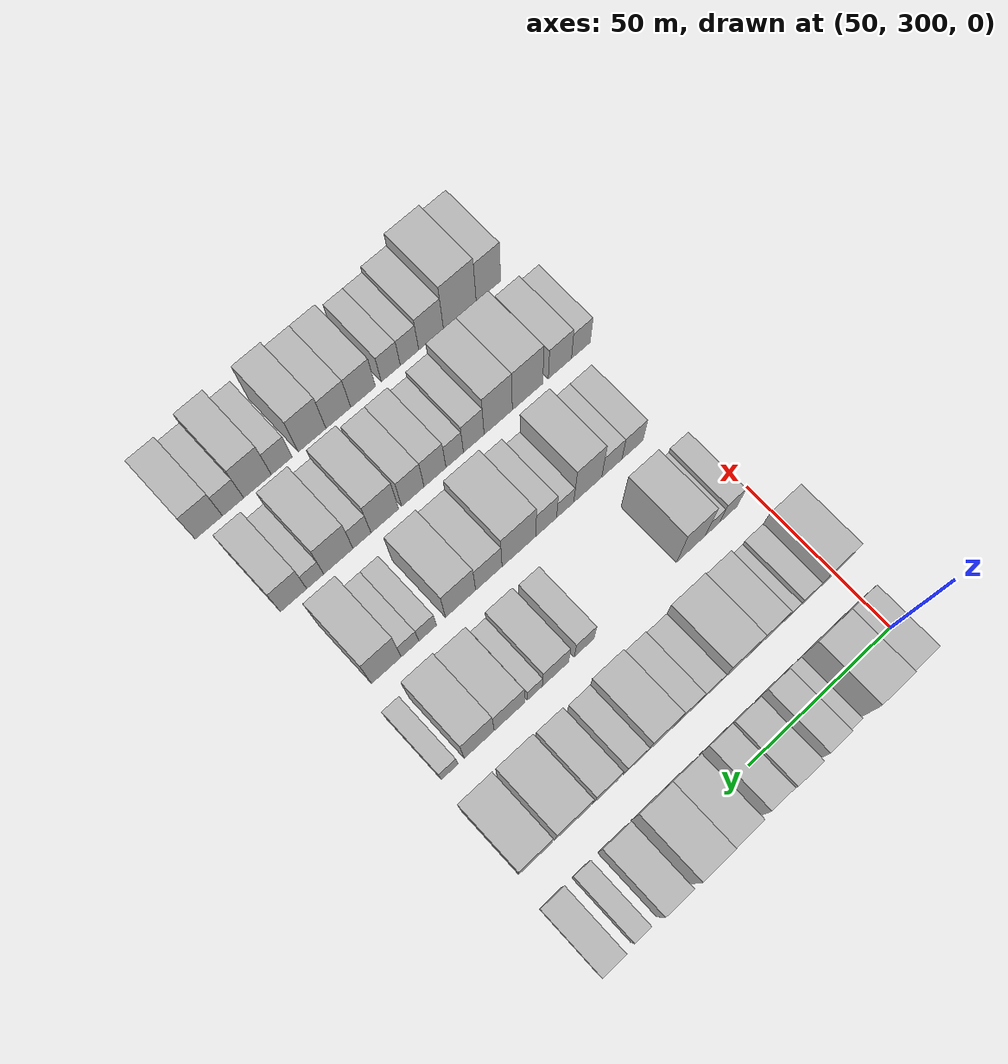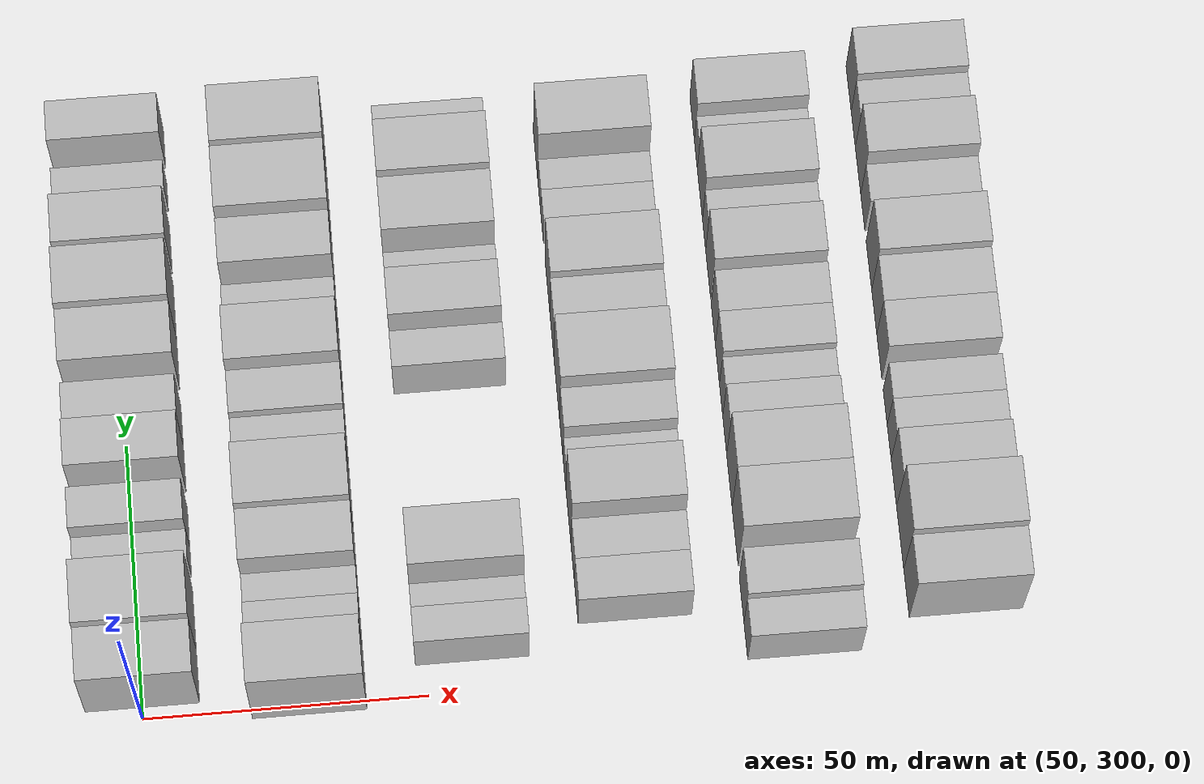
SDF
<sdf version="1.6">
 <world name="default">
  <model name="building_87">
   <static>1</static>
   <pose>50.0000 306.8211 0 0.000000 0.000000 0.000000</pose>
   <link name="link">
    <pose>0 0 10.50 0 0 0</pose>
    <collision name="collision"><geometry><box><size>20.0000 9.4453 21.0000</size></box></geometry></collision>
    <visual name="visual">
     <cast_shadows>0</cast_shadows>
     <geometry><box><size>20.0000 9.4453 21.0000</size></box></geometry>
     <material>
      <script>
       <uri>model://HANNAS_wall/materials/scripts</uri>
       <uri>model://HANNAS_wall/materials/textures</uri>
       <name>vrc/HANNAS_wall</name>
      </script>
     </material>
    </visual>
   </link>
  </model>
  <model name="building_88">
   <static>1</static>
   <pose>50.0000 317.1719 0 0.000000 0.000000 0.000000</pose>
   <link name="link">
    <pose>0 0 12.00 0 0 0</pose>
    <collision name="collision"><geometry><box><size>20.0000 11.2561 24.0000</size></box></geometry></collision>
    <visual name="visual">
     <cast_shadows>0</cast_shadows>
     <geometry><box><size>20.0000 11.2561 24.0000</size></box></geometry>
     <material>
      <script>
       <uri>model://HANNAS_wall/materials/scripts</uri>
       <uri>model://HANNAS_wall/materials/textures</uri>
       <name>vrc/HANNAS_wall</name>
      </script>
     </material>
    </visual>
   </link>
  </model>
  <model name="building_89">
   <static>1</static>
   <pose>50.0000 327.5423 0 0.000000 0.000000 0.000000</pose>
   <link name="link">
    <pose>0 0 6.00 0 0 0</pose>
    <collision name="collision"><geometry><box><size>20.0000 5.4848 12.0000</size></box></geometry></collision>
    <visual name="visual">
     <cast_shadows>0</cast_shadows>
     <geometry><box><size>20.0000 5.4848 12.0000</size></box></geometry>
     <material>
      <script>
       <uri>model://HANNAS_wall/materials/scripts</uri>
       <uri>model://HANNAS_wall/materials/textures</uri>
       <name>vrc/HANNAS_wall</name>
      </script>
     </material>
    </visual>
   </link>
  </model>
  <model name="building_90">
   <static>1</static>
   <pose>50.0000 333.9742 0 0.000000 0.000000 0.000000</pose>
   <link name="link">
    <pose>0 0 9.00 0 0 0</pose>
    <collision name="collision"><geometry><box><size>20.0000 7.3790 18.0000</size></box></geometry></collision>
    <visual name="visual">
     <cast_shadows>0</cast_shadows>
     <geometry><box><size>20.0000 7.3790 18.0000</size></box></geometry>
     <material>
      <script>
       <uri>model://HANNAS_wall/materials/scripts</uri>
       <uri>model://HANNAS_wall/materials/textures</uri>
       <name>vrc/HANNAS_wall</name>
      </script>
     </material>
    </visual>
   </link>
  </model>
  <model name="building_91">
   <static>1</static>
   <pose>50.0000 344.9111 0 0.000000 0.000000 0.000000</pose>
   <link name="link">
    <pose>0 0 10.50 0 0 0</pose>
    <collision name="collision"><geometry><box><size>20.0000 8.4949 21.0000</size></box></geometry></collision>
    <visual name="visual">
     <cast_shadows>0</cast_shadows>
     <geometry><box><size>20.0000 8.4949 21.0000</size></box></geometry>
     <material>
      <script>
       <uri>model://HANNAS_wall/materials/scripts</uri>
       <uri>model://HANNAS_wall/materials/textures</uri>
       <name>vrc/HANNAS_wall</name>
      </script>
     </material>
    </visual>
   </link>
  </model>
  <model name="building_92">
   <static>1</static>
   <pose>50.0000 352.9924 0 0.000000 0.000000 0.000000</pose>
   <link name="link">
    <pose>0 0 9.00 0 0 0</pose>
    <collision name="collision"><geometry><box><size>20.0000 7.6675 18.0000</size></box></geometry></collision>
    <visual name="visual">
     <cast_shadows>0</cast_shadows>
     <geometry><box><size>20.0000 7.6675 18.0000</size></box></geometry>
     <material>
      <script>
       <uri>model://HANNAS_wall/materials/scripts</uri>
       <uri>model://HANNAS_wall/materials/textures</uri>
       <name>vrc/HANNAS_wall</name>
      </script>
     </material>
    </visual>
   </link>
  </model>
  <model name="building_93">
   <static>1</static>
   <pose>50.0000 364.6114 0 0.000000 0.000000 0.000000</pose>
   <link name="link">
    <pose>0 0 10.50 0 0 0</pose>
    <collision name="collision"><geometry><box><size>20.0000 9.5706 21.0000</size></box></geometry></collision>
    <visual name="visual">
     <cast_shadows>0</cast_shadows>
     <geometry><box><size>20.0000 9.5706 21.0000</size></box></geometry>
     <material>
      <script>
       <uri>model://HANNAS_wall/materials/scripts</uri>
       <uri>model://HANNAS_wall/materials/textures</uri>
       <name>vrc/HANNAS_wall</name>
      </script>
     </material>
    </visual>
   </link>
  </model>
  <model name="building_94">
   <static>1</static>
   <pose>50.0000 374.6663 0 0.000000 0.000000 0.000000</pose>
   <link name="link">
    <pose>0 0 12.00 0 0 0</pose>
    <collision name="collision"><geometry><box><size>20.0000 10.5391 24.0000</size></box></geometry></collision>
    <visual name="visual">
     <cast_shadows>0</cast_shadows>
     <geometry><box><size>20.0000 10.5391 24.0000</size></box></geometry>
     <material>
      <script>
       <uri>model://HANNAS_wall/materials/scripts</uri>
       <uri>model://HANNAS_wall/materials/textures</uri>
       <name>vrc/HANNAS_wall</name>
      </script>
     </material>
    </visual>
   </link>
  </model>
  <model name="building_95">
   <static>1</static>
   <pose>50.0000 386.4221 0 0.000000 0.000000 0.000000</pose>
   <link name="link">
    <pose>0 0 10.50 0 0 0</pose>
    <collision name="collision"><geometry><box><size>20.0000 8.9727 21.0000</size></box></geometry></collision>
    <visual name="visual">
     <cast_shadows>0</cast_shadows>
     <geometry><box><size>20.0000 8.9727 21.0000</size></box></geometry>
     <material>
      <script>
       <uri>model://HANNAS_wall/materials/scripts</uri>
       <uri>model://HANNAS_wall/materials/textures</uri>
       <name>vrc/HANNAS_wall</name>
      </script>
     </material>
    </visual>
   </link>
  </model>
  <model name="building_96">
   <static>1</static>
   <pose>50.0000 396.6335 0 0.000000 0.000000 0.000000</pose>
   <link name="link">
    <pose>0 0 6.00 0 0 0</pose>
    <collision name="collision"><geometry><box><size>20.0000 5.4501 12.0000</size></box></geometry></collision>
    <visual name="visual">
     <cast_shadows>0</cast_shadows>
     <geometry><box><size>20.0000 5.4501 12.0000</size></box></geometry>
     <material>
      <script>
       <uri>model://HANNAS_wall/materials/scripts</uri>
       <uri>model://HANNAS_wall/materials/textures</uri>
       <name>vrc/HANNAS_wall</name>
      </script>
     </material>
    </visual>
   </link>
  </model>
  <model name="building_97">
   <static>1</static>
   <pose>50.0000 406.1082 0 0.000000 0.000000 0.000000</pose>
   <link name="link">
    <pose>0 0 9.00 0 0 0</pose>
    <collision name="collision"><geometry><box><size>20.0000 7.4992 18.0000</size></box></geometry></collision>
    <visual name="visual">
     <cast_shadows>0</cast_shadows>
     <geometry><box><size>20.0000 7.4992 18.0000</size></box></geometry>
     <material>
      <script>
       <uri>model://HANNAS_wall/materials/scripts</uri>
       <uri>model://HANNAS_wall/materials/textures</uri>
       <name>vrc/HANNAS_wall</name>
      </script>
     </material>
    </visual>
   </link>
  </model>
  <model name="building_198">
   <static>1</static>
   <pose>79.0000 303.7553 0 0.000000 0.000000 0.000000</pose>
   <link name="link">
    <pose>0 0 12.00 0 0 0</pose>
    <collision name="collision"><geometry><box><size>20.0000 10.5466 24.0000</size></box></geometry></collision>
    <visual name="visual">
     <cast_shadows>0</cast_shadows>
     <geometry><box><size>20.0000 10.5466 24.0000</size></box></geometry>
     <material>
      <script>
       <uri>model://HANNAS_wall/materials/scripts</uri>
       <uri>model://HANNAS_wall/materials/textures</uri>
       <name>vrc/HANNAS_wall</name>
      </script>
     </material>
    </visual>
   </link>
  </model>
  <model name="building_199">
   <static>1</static>
   <pose>79.0000 312.1831 0 0.000000 0.000000 0.000000</pose>
   <link name="link">
    <pose>0 0 7.50 0 0 0</pose>
    <collision name="collision"><geometry><box><size>20.0000 6.3090 15.0000</size></box></geometry></collision>
    <visual name="visual">
     <cast_shadows>0</cast_shadows>
     <geometry><box><size>20.0000 6.3090 15.0000</size></box></geometry>
     <material>
      <script>
       <uri>model://HANNAS_wall/materials/scripts</uri>
       <uri>model://HANNAS_wall/materials/textures</uri>
       <name>vrc/HANNAS_wall</name>
      </script>
     </material>
    </visual>
   </link>
  </model>
  <model name="building_200">
   <static>1</static>
   <pose>79.0000 318.2873 0 0.000000 0.000000 0.000000</pose>
   <link name="link">
    <pose>0 0 6.00 0 0 0</pose>
    <collision name="collision"><geometry><box><size>20.0000 5.8994 12.0000</size></box></geometry></collision>
    <visual name="visual">
     <cast_shadows>0</cast_shadows>
     <geometry><box><size>20.0000 5.8994 12.0000</size></box></geometry>
     <material>
      <script>
       <uri>model://HANNAS_wall/materials/scripts</uri>
       <uri>model://HANNAS_wall/materials/textures</uri>
       <name>vrc/HANNAS_wall</name>
      </script>
     </material>
    </visual>
   </link>
  </model>
  <model name="building_201">
   <static>1</static>
   <pose>79.0000 325.7879 0 0.000000 0.000000 0.000000</pose>
   <link name="link">
    <pose>0 0 10.50 0 0 0</pose>
    <collision name="collision"><geometry><box><size>20.0000 9.1018 21.0000</size></box></geometry></collision>
    <visual name="visual">
     <cast_shadows>0</cast_shadows>
     <geometry><box><size>20.0000 9.1018 21.0000</size></box></geometry>
     <material>
      <script>
       <uri>model://HANNAS_wall/materials/scripts</uri>
       <uri>model://HANNAS_wall/materials/textures</uri>
       <name>vrc/HANNAS_wall</name>
      </script>
     </material>
    </visual>
   </link>
  </model>
  <model name="building_202">
   <static>1</static>
   <pose>79.0000 335.9193 0 0.000000 0.000000 0.000000</pose>
   <link name="link">
    <pose>0 0 12.00 0 0 0</pose>
    <collision name="collision"><geometry><box><size>20.0000 11.1610 24.0000</size></box></geometry></collision>
    <visual name="visual">
     <cast_shadows>0</cast_shadows>
     <geometry><box><size>20.0000 11.1610 24.0000</size></box></geometry>
     <material>
      <script>
       <uri>model://HANNAS_wall/materials/scripts</uri>
       <uri>model://HANNAS_wall/materials/textures</uri>
       <name>vrc/HANNAS_wall</name>
      </script>
     </material>
    </visual>
   </link>
  </model>
  <model name="building_203">
   <static>1</static>
   <pose>79.0000 345.1697 0 0.000000 0.000000 0.000000</pose>
   <link name="link">
    <pose>0 0 7.50 0 0 0</pose>
    <collision name="collision"><geometry><box><size>20.0000 7.3400 15.0000</size></box></geometry></collision>
    <visual name="visual">
     <cast_shadows>0</cast_shadows>
     <geometry><box><size>20.0000 7.3400 15.0000</size></box></geometry>
     <material>
      <script>
       <uri>model://HANNAS_wall/materials/scripts</uri>
       <uri>model://HANNAS_wall/materials/textures</uri>
       <name>vrc/HANNAS_wall</name>
      </script>
     </material>
    </visual>
   </link>
  </model>
  <model name="building_204">
   <static>1</static>
   <pose>79.0000 352.7251 0 0.000000 0.000000 0.000000</pose>
   <link name="link">
    <pose>0 0 9.00 0 0 0</pose>
    <collision name="collision"><geometry><box><size>20.0000 7.7707 18.0000</size></box></geometry></collision>
    <visual name="visual">
     <cast_shadows>0</cast_shadows>
     <geometry><box><size>20.0000 7.7707 18.0000</size></box></geometry>
     <material>
      <script>
       <uri>model://HANNAS_wall/materials/scripts</uri>
       <uri>model://HANNAS_wall/materials/textures</uri>
       <name>vrc/HANNAS_wall</name>
      </script>
     </material>
    </visual>
   </link>
  </model>
  <model name="building_205">
   <static>1</static>
   <pose>79.0000 361.6115 0 0.000000 0.000000 0.000000</pose>
   <link name="link">
    <pose>0 0 12.00 0 0 0</pose>
    <collision name="collision"><geometry><box><size>20.0000 10.0022 24.0000</size></box></geometry></collision>
    <visual name="visual">
     <cast_shadows>0</cast_shadows>
     <geometry><box><size>20.0000 10.0022 24.0000</size></box></geometry>
     <material>
      <script>
       <uri>model://HANNAS_wall/materials/scripts</uri>
       <uri>model://HANNAS_wall/materials/textures</uri>
       <name>vrc/HANNAS_wall</name>
      </script>
     </material>
    </visual>
   </link>
  </model>
  <model name="building_206">
   <static>1</static>
   <pose>79.0000 370.1046 0 0.000000 0.000000 0.000000</pose>
   <link name="link">
    <pose>0 0 7.50 0 0 0</pose>
    <collision name="collision"><geometry><box><size>20.0000 6.9839 15.0000</size></box></geometry></collision>
    <visual name="visual">
     <cast_shadows>0</cast_shadows>
     <geometry><box><size>20.0000 6.9839 15.0000</size></box></geometry>
     <material>
      <script>
       <uri>model://HANNAS_wall/materials/scripts</uri>
       <uri>model://HANNAS_wall/materials/textures</uri>
       <name>vrc/HANNAS_wall</name>
      </script>
     </material>
    </visual>
   </link>
  </model>
  <model name="building_207">
   <static>1</static>
   <pose>79.0000 379.7966 0 0.000000 0.000000 0.000000</pose>
   <link name="link">
    <pose>0 0 10.50 0 0 0</pose>
    <collision name="collision"><geometry><box><size>20.0000 8.4002 21.0000</size></box></geometry></collision>
    <visual name="visual">
     <cast_shadows>0</cast_shadows>
     <geometry><box><size>20.0000 8.4002 21.0000</size></box></geometry>
     <material>
      <script>
       <uri>model://HANNAS_wall/materials/scripts</uri>
       <uri>model://HANNAS_wall/materials/textures</uri>
       <name>vrc/HANNAS_wall</name>
      </script>
     </material>
    </visual>
   </link>
  </model>
  <model name="building_208">
   <static>1</static>
   <pose>79.0000 390.7366 0 0.000000 0.000000 0.000000</pose>
   <link name="link">
    <pose>0 0 12.00 0 0 0</pose>
    <collision name="collision"><geometry><box><size>20.0000 11.4799 24.0000</size></box></geometry></collision>
    <visual name="visual">
     <cast_shadows>0</cast_shadows>
     <geometry><box><size>20.0000 11.4799 24.0000</size></box></geometry>
     <material>
      <script>
       <uri>model://HANNAS_wall/materials/scripts</uri>
       <uri>model://HANNAS_wall/materials/textures</uri>
       <name>vrc/HANNAS_wall</name>
      </script>
     </material>
    </visual>
   </link>
  </model>
  <model name="building_209">
   <static>1</static>
   <pose>79.0000 402.7666 0 0.000000 0.000000 0.000000</pose>
   <link name="link">
    <pose>0 0 12.00 0 0 0</pose>
    <collision name="collision"><geometry><box><size>20.0000 10.5800 24.0000</size></box></geometry></collision>
    <visual name="visual">
     <cast_shadows>0</cast_shadows>
     <geometry><box><size>20.0000 10.5800 24.0000</size></box></geometry>
     <material>
      <script>
       <uri>model://HANNAS_wall/materials/scripts</uri>
       <uri>model://HANNAS_wall/materials/textures</uri>
       <name>vrc/HANNAS_wall</name>
      </script>
     </material>
    </visual>
   </link>
  </model>
  <model name="building_308">
   <static>1</static>
   <pose>108.0000 308.8522 0 0.000000 0.000000 0.000000</pose>
   <link name="link">
    <pose>0 0 7.50 0 0 0</pose>
    <collision name="collision"><geometry><box><size>20.0000 6.3395 15.0000</size></box></geometry></collision>
    <visual name="visual">
     <cast_shadows>0</cast_shadows>
     <geometry><box><size>20.0000 6.3395 15.0000</size></box></geometry>
     <material>
      <script>
       <uri>model://HANNAS_wall/materials/scripts</uri>
       <uri>model://HANNAS_wall/materials/textures</uri>
       <name>vrc/HANNAS_wall</name>
      </script>
     </material>
    </visual>
   </link>
  </model>
  <model name="building_309">
   <static>1</static>
   <pose>108.0000 314.5293 0 0.000000 0.000000 0.000000</pose>
   <link name="link">
    <pose>0 0 6.00 0 0 0</pose>
    <collision name="collision"><geometry><box><size>20.0000 5.0147 12.0000</size></box></geometry></collision>
    <visual name="visual">
     <cast_shadows>0</cast_shadows>
     <geometry><box><size>20.0000 5.0147 12.0000</size></box></geometry>
     <material>
      <script>
       <uri>model://HANNAS_wall/materials/scripts</uri>
       <uri>model://HANNAS_wall/materials/textures</uri>
       <name>vrc/HANNAS_wall</name>
      </script>
     </material>
    </visual>
   </link>
  </model>
  <model name="building_310">
   <static>1</static>
   <pose>108.0000 322.1124 0 0.000000 0.000000 0.000000</pose>
   <link name="link">
    <pose>0 0 12.00 0 0 0</pose>
    <collision name="collision"><geometry><box><size>20.0000 10.1515 24.0000</size></box></geometry></collision>
    <visual name="visual">
     <cast_shadows>0</cast_shadows>
     <geometry><box><size>20.0000 10.1515 24.0000</size></box></geometry>
     <material>
      <script>
       <uri>model://HANNAS_wall/materials/scripts</uri>
       <uri>model://HANNAS_wall/materials/textures</uri>
       <name>vrc/HANNAS_wall</name>
      </script>
     </material>
    </visual>
   </link>
  </model>
  <model name="building_311">
   <static>1</static>
   <pose>108.0000 359.2043 0 0.000000 0.000000 0.000000</pose>
   <link name="link">
    <pose>0 0 7.50 0 0 0</pose>
    <collision name="collision"><geometry><box><size>20.0000 6.6774 15.0000</size></box></geometry></collision>
    <visual name="visual">
     <cast_shadows>0</cast_shadows>
     <geometry><box><size>20.0000 6.6774 15.0000</size></box></geometry>
     <material>
      <script>
       <uri>model://HANNAS_wall/materials/scripts</uri>
       <uri>model://HANNAS_wall/materials/textures</uri>
       <name>vrc/HANNAS_wall</name>
      </script>
     </material>
    </visual>
   </link>
  </model>
  <model name="building_312">
   <static>1</static>
   <pose>108.0000 368.9451 0 0.000000 0.000000 0.000000</pose>
   <link name="link">
    <pose>0 0 9.00 0 0 0</pose>
    <collision name="collision"><geometry><box><size>20.0000 8.8042 18.0000</size></box></geometry></collision>
    <visual name="visual">
     <cast_shadows>0</cast_shadows>
     <geometry><box><size>20.0000 8.8042 18.0000</size></box></geometry>
     <material>
      <script>
       <uri>model://HANNAS_wall/materials/scripts</uri>
       <uri>model://HANNAS_wall/materials/textures</uri>
       <name>vrc/HANNAS_wall</name>
      </script>
     </material>
    </visual>
   </link>
  </model>
  <model name="building_313">
   <static>1</static>
   <pose>108.0000 375.8546 0 0.000000 0.000000 0.000000</pose>
   <link name="link">
    <pose>0 0 6.00 0 0 0</pose>
    <collision name="collision"><geometry><box><size>20.0000 5.0149 12.0000</size></box></geometry></collision>
    <visual name="visual">
     <cast_shadows>0</cast_shadows>
     <geometry><box><size>20.0000 5.0149 12.0000</size></box></geometry>
     <material>
      <script>
       <uri>model://HANNAS_wall/materials/scripts</uri>
       <uri>model://HANNAS_wall/materials/textures</uri>
       <name>vrc/HANNAS_wall</name>
      </script>
     </material>
    </visual>
   </link>
  </model>
  <model name="building_314">
   <static>1</static>
   <pose>108.0000 384.3330 0 0.000000 0.000000 0.000000</pose>
   <link name="link">
    <pose>0 0 10.50 0 0 0</pose>
    <collision name="collision"><geometry><box><size>20.0000 9.9418 21.0000</size></box></geometry></collision>
    <visual name="visual">
     <cast_shadows>0</cast_shadows>
     <geometry><box><size>20.0000 9.9418 21.0000</size></box></geometry>
     <material>
      <script>
       <uri>model://HANNAS_wall/materials/scripts</uri>
       <uri>model://HANNAS_wall/materials/textures</uri>
       <name>vrc/HANNAS_wall</name>
      </script>
     </material>
    </visual>
   </link>
  </model>
  <model name="building_315">
   <static>1</static>
   <pose>108.0000 394.2015 0 0.000000 0.000000 0.000000</pose>
   <link name="link">
    <pose>0 0 12.00 0 0 0</pose>
    <collision name="collision"><geometry><box><size>20.0000 9.7951 24.0000</size></box></geometry></collision>
    <visual name="visual">
     <cast_shadows>0</cast_shadows>
     <geometry><box><size>20.0000 9.7951 24.0000</size></box></geometry>
     <material>
      <script>
       <uri>model://HANNAS_wall/materials/scripts</uri>
       <uri>model://HANNAS_wall/materials/textures</uri>
       <name>vrc/HANNAS_wall</name>
      </script>
     </material>
    </visual>
   </link>
  </model>
  <model name="building_316">
   <static>1</static>
   <pose>108.0000 403.8197 0 0.000000 0.000000 0.000000</pose>
   <link name="link">
    <pose>0 0 6.00 0 0 0</pose>
    <collision name="collision"><geometry><box><size>20.0000 5.4414 12.0000</size></box></geometry></collision>
    <visual name="visual">
     <cast_shadows>0</cast_shadows>
     <geometry><box><size>20.0000 5.4414 12.0000</size></box></geometry>
     <material>
      <script>
       <uri>model://HANNAS_wall/materials/scripts</uri>
       <uri>model://HANNAS_wall/materials/textures</uri>
       <name>vrc/HANNAS_wall</name>
      </script>
     </material>
    </visual>
   </link>
  </model>
  <model name="building_425">
   <static>1</static>
   <pose>137.0000 314.5640 0 0.000000 0.000000 0.000000</pose>
   <link name="link">
    <pose>0 0 7.50 0 0 0</pose>
    <collision name="collision"><geometry><box><size>20.0000 7.4914 15.0000</size></box></geometry></collision>
    <visual name="visual">
     <cast_shadows>0</cast_shadows>
     <geometry><box><size>20.0000 7.4914 15.0000</size></box></geometry>
     <material>
      <script>
       <uri>model://HANNAS_wall/materials/scripts</uri>
       <uri>model://HANNAS_wall/materials/textures</uri>
       <name>vrc/HANNAS_wall</name>
      </script>
     </material>
    </visual>
   </link>
  </model>
  <model name="building_426">
   <static>1</static>
   <pose>137.0000 321.8882 0 0.000000 0.000000 0.000000</pose>
   <link name="link">
    <pose>0 0 7.50 0 0 0</pose>
    <collision name="collision"><geometry><box><size>20.0000 7.1569 15.0000</size></box></geometry></collision>
    <visual name="visual">
     <cast_shadows>0</cast_shadows>
     <geometry><box><size>20.0000 7.1569 15.0000</size></box></geometry>
     <material>
      <script>
       <uri>model://HANNAS_wall/materials/scripts</uri>
       <uri>model://HANNAS_wall/materials/textures</uri>
       <name>vrc/HANNAS_wall</name>
      </script>
     </material>
    </visual>
   </link>
  </model>
  <model name="building_427">
   <static>1</static>
   <pose>137.0000 330.3693 0 0.000000 0.000000 0.000000</pose>
   <link name="link">
    <pose>0 0 12.00 0 0 0</pose>
    <collision name="collision"><geometry><box><size>20.0000 9.8052 24.0000</size></box></geometry></collision>
    <visual name="visual">
     <cast_shadows>0</cast_shadows>
     <geometry><box><size>20.0000 9.8052 24.0000</size></box></geometry>
     <material>
      <script>
       <uri>model://HANNAS_wall/materials/scripts</uri>
       <uri>model://HANNAS_wall/materials/textures</uri>
       <name>vrc/HANNAS_wall</name>
      </script>
     </material>
    </visual>
   </link>
  </model>
  <model name="building_428">
   <static>1</static>
   <pose>137.0000 338.2673 0 0.000000 0.000000 0.000000</pose>
   <link name="link">
    <pose>0 0 6.00 0 0 0</pose>
    <collision name="collision"><geometry><box><size>20.0000 5.9908 12.0000</size></box></geometry></collision>
    <visual name="visual">
     <cast_shadows>0</cast_shadows>
     <geometry><box><size>20.0000 5.9908 12.0000</size></box></geometry>
     <material>
      <script>
       <uri>model://HANNAS_wall/materials/scripts</uri>
       <uri>model://HANNAS_wall/materials/textures</uri>
       <name>vrc/HANNAS_wall</name>
      </script>
     </material>
    </visual>
   </link>
  </model>
  <model name="building_429">
   <static>1</static>
   <pose>137.0000 344.8664 0 0.000000 0.000000 0.000000</pose>
   <link name="link">
    <pose>0 0 9.00 0 0 0</pose>
    <collision name="collision"><geometry><box><size>20.0000 7.2075 18.0000</size></box></geometry></collision>
    <visual name="visual">
     <cast_shadows>0</cast_shadows>
     <geometry><box><size>20.0000 7.2075 18.0000</size></box></geometry>
     <material>
      <script>
       <uri>model://HANNAS_wall/materials/scripts</uri>
       <uri>model://HANNAS_wall/materials/textures</uri>
       <name>vrc/HANNAS_wall</name>
      </script>
     </material>
    </visual>
   </link>
  </model>
  <model name="building_430">
   <static>1</static>
   <pose>137.0000 354.2401 0 0.000000 0.000000 0.000000</pose>
   <link name="link">
    <pose>0 0 12.00 0 0 0</pose>
    <collision name="collision"><geometry><box><size>20.0000 11.5398 24.0000</size></box></geometry></collision>
    <visual name="visual">
     <cast_shadows>0</cast_shadows>
     <geometry><box><size>20.0000 11.5398 24.0000</size></box></geometry>
     <material>
      <script>
       <uri>model://HANNAS_wall/materials/scripts</uri>
       <uri>model://HANNAS_wall/materials/textures</uri>
       <name>vrc/HANNAS_wall</name>
      </script>
     </material>
    </visual>
   </link>
  </model>
  <model name="building_431">
   <static>1</static>
   <pose>137.0000 364.4803 0 0.000000 0.000000 0.000000</pose>
   <link name="link">
    <pose>0 0 9.00 0 0 0</pose>
    <collision name="collision"><geometry><box><size>20.0000 8.9406 18.0000</size></box></geometry></collision>
    <visual name="visual">
     <cast_shadows>0</cast_shadows>
     <geometry><box><size>20.0000 8.9406 18.0000</size></box></geometry>
     <material>
      <script>
       <uri>model://HANNAS_wall/materials/scripts</uri>
       <uri>model://HANNAS_wall/materials/textures</uri>
       <name>vrc/HANNAS_wall</name>
      </script>
     </material>
    </visual>
   </link>
  </model>
  <model name="building_432">
   <static>1</static>
   <pose>137.0000 374.0205 0 0.000000 0.000000 0.000000</pose>
   <link name="link">
    <pose>0 0 10.50 0 0 0</pose>
    <collision name="collision"><geometry><box><size>20.0000 10.1398 21.0000</size></box></geometry></collision>
    <visual name="visual">
     <cast_shadows>0</cast_shadows>
     <geometry><box><size>20.0000 10.1398 21.0000</size></box></geometry>
     <material>
      <script>
       <uri>model://HANNAS_wall/materials/scripts</uri>
       <uri>model://HANNAS_wall/materials/textures</uri>
       <name>vrc/HANNAS_wall</name>
      </script>
     </material>
    </visual>
   </link>
  </model>
  <model name="building_433">
   <static>1</static>
   <pose>137.0000 385.0227 0 0.000000 0.000000 0.000000</pose>
   <link name="link">
    <pose>0 0 6.00 0 0 0</pose>
    <collision name="collision"><geometry><box><size>20.0000 5.8645 12.0000</size></box></geometry></collision>
    <visual name="visual">
     <cast_shadows>0</cast_shadows>
     <geometry><box><size>20.0000 5.8645 12.0000</size></box></geometry>
     <material>
      <script>
       <uri>model://HANNAS_wall/materials/scripts</uri>
       <uri>model://HANNAS_wall/materials/textures</uri>
       <name>vrc/HANNAS_wall</name>
      </script>
     </material>
    </visual>
   </link>
  </model>
  <model name="building_434">
   <static>1</static>
   <pose>137.0000 390.8449 0 0.000000 0.000000 0.000000</pose>
   <link name="link">
    <pose>0 0 6.00 0 0 0</pose>
    <collision name="collision"><geometry><box><size>20.0000 5.7800 12.0000</size></box></geometry></collision>
    <visual name="visual">
     <cast_shadows>0</cast_shadows>
     <geometry><box><size>20.0000 5.7800 12.0000</size></box></geometry>
     <material>
      <script>
       <uri>model://HANNAS_wall/materials/scripts</uri>
       <uri>model://HANNAS_wall/materials/textures</uri>
       <name>vrc/HANNAS_wall</name>
      </script>
     </material>
    </visual>
   </link>
  </model>
  <model name="building_435">
   <static>1</static>
   <pose>137.0000 398.6169 0 0.000000 0.000000 0.000000</pose>
   <link name="link">
    <pose>0 0 12.00 0 0 0</pose>
    <collision name="collision"><geometry><box><size>20.0000 9.7638 24.0000</size></box></geometry></collision>
    <visual name="visual">
     <cast_shadows>0</cast_shadows>
     <geometry><box><size>20.0000 9.7638 24.0000</size></box></geometry>
     <material>
      <script>
       <uri>model://HANNAS_wall/materials/scripts</uri>
       <uri>model://HANNAS_wall/materials/textures</uri>
       <name>vrc/HANNAS_wall</name>
      </script>
     </material>
    </visual>
   </link>
  </model>
  <model name="building_539">
   <static>1</static>
   <pose>166.0000 305.2228 0 0.000000 0.000000 0.000000</pose>
   <link name="link">
    <pose>0 0 7.50 0 0 0</pose>
    <collision name="collision"><geometry><box><size>20.0000 6.7522 15.0000</size></box></geometry></collision>
    <visual name="visual">
     <cast_shadows>0</cast_shadows>
     <geometry><box><size>20.0000 6.7522 15.0000</size></box></geometry>
     <material>
      <script>
       <uri>model://HANNAS_wall/materials/scripts</uri>
       <uri>model://HANNAS_wall/materials/textures</uri>
       <name>vrc/HANNAS_wall</name>
      </script>
     </material>
    </visual>
   </link>
  </model>
  <model name="building_540">
   <static>1</static>
   <pose>166.0000 312.7634 0 0.000000 0.000000 0.000000</pose>
   <link name="link">
    <pose>0 0 9.00 0 0 0</pose>
    <collision name="collision"><geometry><box><size>20.0000 8.3290 18.0000</size></box></geometry></collision>
    <visual name="visual">
     <cast_shadows>0</cast_shadows>
     <geometry><box><size>20.0000 8.3290 18.0000</size></box></geometry>
     <material>
      <script>
       <uri>model://HANNAS_wall/materials/scripts</uri>
       <uri>model://HANNAS_wall/materials/textures</uri>
       <name>vrc/HANNAS_wall</name>
      </script>
     </material>
    </visual>
   </link>
  </model>
  <model name="building_541">
   <static>1</static>
   <pose>166.0000 324.3075 0 0.000000 0.000000 0.000000</pose>
   <link name="link">
    <pose>0 0 12.00 0 0 0</pose>
    <collision name="collision"><geometry><box><size>20.0000 10.7593 24.0000</size></box></geometry></collision>
    <visual name="visual">
     <cast_shadows>0</cast_shadows>
     <geometry><box><size>20.0000 10.7593 24.0000</size></box></geometry>
     <material>
      <script>
       <uri>model://HANNAS_wall/materials/scripts</uri>
       <uri>model://HANNAS_wall/materials/textures</uri>
       <name>vrc/HANNAS_wall</name>
      </script>
     </material>
    </visual>
   </link>
  </model>
  <model name="building_542">
   <static>1</static>
   <pose>166.0000 334.6249 0 0.000000 0.000000 0.000000</pose>
   <link name="link">
    <pose>0 0 12.00 0 0 0</pose>
    <collision name="collision"><geometry><box><size>20.0000 9.8756 24.0000</size></box></geometry></collision>
    <visual name="visual">
     <cast_shadows>0</cast_shadows>
     <geometry><box><size>20.0000 9.8756 24.0000</size></box></geometry>
     <material>
      <script>
       <uri>model://HANNAS_wall/materials/scripts</uri>
       <uri>model://HANNAS_wall/materials/textures</uri>
       <name>vrc/HANNAS_wall</name>
      </script>
     </material>
    </visual>
   </link>
  </model>
  <model name="building_543">
   <static>1</static>
   <pose>166.0000 343.1630 0 0.000000 0.000000 0.000000</pose>
   <link name="link">
    <pose>0 0 9.00 0 0 0</pose>
    <collision name="collision"><geometry><box><size>20.0000 7.2007 18.0000</size></box></geometry></collision>
    <visual name="visual">
     <cast_shadows>0</cast_shadows>
     <geometry><box><size>20.0000 7.2007 18.0000</size></box></geometry>
     <material>
      <script>
       <uri>model://HANNAS_wall/materials/scripts</uri>
       <uri>model://HANNAS_wall/materials/textures</uri>
       <name>vrc/HANNAS_wall</name>
      </script>
     </material>
    </visual>
   </link>
  </model>
  <model name="building_544">
   <static>1</static>
   <pose>166.0000 349.7685 0 0.000000 0.000000 0.000000</pose>
   <link name="link">
    <pose>0 0 7.50 0 0 0</pose>
    <collision name="collision"><geometry><box><size>20.0000 6.0102 15.0000</size></box></geometry></collision>
    <visual name="visual">
     <cast_shadows>0</cast_shadows>
     <geometry><box><size>20.0000 6.0102 15.0000</size></box></geometry>
     <material>
      <script>
       <uri>model://HANNAS_wall/materials/scripts</uri>
       <uri>model://HANNAS_wall/materials/textures</uri>
       <name>vrc/HANNAS_wall</name>
      </script>
     </material>
    </visual>
   </link>
  </model>
  <model name="building_545">
   <static>1</static>
   <pose>166.0000 356.5333 0 0.000000 0.000000 0.000000</pose>
   <link name="link">
    <pose>0 0 9.00 0 0 0</pose>
    <collision name="collision"><geometry><box><size>20.0000 7.5193 18.0000</size></box></geometry></collision>
    <visual name="visual">
     <cast_shadows>0</cast_shadows>
     <geometry><box><size>20.0000 7.5193 18.0000</size></box></geometry>
     <material>
      <script>
       <uri>model://HANNAS_wall/materials/scripts</uri>
       <uri>model://HANNAS_wall/materials/textures</uri>
       <name>vrc/HANNAS_wall</name>
      </script>
     </material>
    </visual>
   </link>
  </model>
  <model name="building_546">
   <static>1</static>
   <pose>166.0000 364.1255 0 0.000000 0.000000 0.000000</pose>
   <link name="link">
    <pose>0 0 9.00 0 0 0</pose>
    <collision name="collision"><geometry><box><size>20.0000 7.6651 18.0000</size></box></geometry></collision>
    <visual name="visual">
     <cast_shadows>0</cast_shadows>
     <geometry><box><size>20.0000 7.6651 18.0000</size></box></geometry>
     <material>
      <script>
       <uri>model://HANNAS_wall/materials/scripts</uri>
       <uri>model://HANNAS_wall/materials/textures</uri>
       <name>vrc/HANNAS_wall</name>
      </script>
     </material>
    </visual>
   </link>
  </model>
  <model name="building_547">
   <static>1</static>
   <pose>166.0000 373.6065 0 0.000000 0.000000 0.000000</pose>
   <link name="link">
    <pose>0 0 10.50 0 0 0</pose>
    <collision name="collision"><geometry><box><size>20.0000 9.2970 21.0000</size></box></geometry></collision>
    <visual name="visual">
     <cast_shadows>0</cast_shadows>
     <geometry><box><size>20.0000 9.2970 21.0000</size></box></geometry>
     <material>
      <script>
       <uri>model://HANNAS_wall/materials/scripts</uri>
       <uri>model://HANNAS_wall/materials/textures</uri>
       <name>vrc/HANNAS_wall</name>
      </script>
     </material>
    </visual>
   </link>
  </model>
  <model name="building_548">
   <static>1</static>
   <pose>166.0000 381.2584 0 0.000000 0.000000 0.000000</pose>
   <link name="link">
    <pose>0 0 7.50 0 0 0</pose>
    <collision name="collision"><geometry><box><size>20.0000 6.0067 15.0000</size></box></geometry></collision>
    <visual name="visual">
     <cast_shadows>0</cast_shadows>
     <geometry><box><size>20.0000 6.0067 15.0000</size></box></geometry>
     <material>
      <script>
       <uri>model://HANNAS_wall/materials/scripts</uri>
       <uri>model://HANNAS_wall/materials/textures</uri>
       <name>vrc/HANNAS_wall</name>
      </script>
     </material>
    </visual>
   </link>
  </model>
  <model name="building_549">
   <static>1</static>
   <pose>166.0000 389.1217 0 0.000000 0.000000 0.000000</pose>
   <link name="link">
    <pose>0 0 10.50 0 0 0</pose>
    <collision name="collision"><geometry><box><size>20.0000 9.7200 21.0000</size></box></geometry></collision>
    <visual name="visual">
     <cast_shadows>0</cast_shadows>
     <geometry><box><size>20.0000 9.7200 21.0000</size></box></geometry>
     <material>
      <script>
       <uri>model://HANNAS_wall/materials/scripts</uri>
       <uri>model://HANNAS_wall/materials/textures</uri>
       <name>vrc/HANNAS_wall</name>
      </script>
     </material>
    </visual>
   </link>
  </model>
  <model name="building_550">
   <static>1</static>
   <pose>166.0000 396.7816 0 0.000000 0.000000 0.000000</pose>
   <link name="link">
    <pose>0 0 6.00 0 0 0</pose>
    <collision name="collision"><geometry><box><size>20.0000 5.5998 12.0000</size></box></geometry></collision>
    <visual name="visual">
     <cast_shadows>0</cast_shadows>
     <geometry><box><size>20.0000 5.5998 12.0000</size></box></geometry>
     <material>
      <script>
       <uri>model://HANNAS_wall/materials/scripts</uri>
       <uri>model://HANNAS_wall/materials/textures</uri>
       <name>vrc/HANNAS_wall</name>
      </script>
     </material>
    </visual>
   </link>
  </model>
  <model name="building_551">
   <static>1</static>
   <pose>166.0000 403.8834 0 0.000000 0.000000 0.000000</pose>
   <link name="link">
    <pose>0 0 9.00 0 0 0</pose>
    <collision name="collision"><geometry><box><size>20.0000 8.6037 18.0000</size></box></geometry></collision>
    <visual name="visual">
     <cast_shadows>0</cast_shadows>
     <geometry><box><size>20.0000 8.6037 18.0000</size></box></geometry>
     <material>
      <script>
       <uri>model://HANNAS_wall/materials/scripts</uri>
       <uri>model://HANNAS_wall/materials/textures</uri>
       <name>vrc/HANNAS_wall</name>
      </script>
     </material>
    </visual>
   </link>
  </model>
  <model name="building_651">
   <static>1</static>
   <pose>195.0000 311.4898 0 0.000000 0.000000 0.000000</pose>
   <link name="link">
    <pose>0 0 10.50 0 0 0</pose>
    <collision name="collision"><geometry><box><size>20.0000 8.8057 21.0000</size></box></geometry></collision>
    <visual name="visual">
     <cast_shadows>0</cast_shadows>
     <geometry><box><size>20.0000 8.8057 21.0000</size></box></geometry>
     <material>
      <script>
       <uri>model://HANNAS_wall/materials/scripts</uri>
       <uri>model://HANNAS_wall/materials/textures</uri>
       <name>vrc/HANNAS_wall</name>
      </script>
     </material>
    </visual>
   </link>
  </model>
  <model name="building_652">
   <static>1</static>
   <pose>195.0000 321.7132 0 0.000000 0.000000 0.000000</pose>
   <link name="link">
    <pose>0 0 12.00 0 0 0</pose>
    <collision name="collision"><geometry><box><size>20.0000 11.6411 24.0000</size></box></geometry></collision>
    <visual name="visual">
     <cast_shadows>0</cast_shadows>
     <geometry><box><size>20.0000 11.6411 24.0000</size></box></geometry>
     <material>
      <script>
       <uri>model://HANNAS_wall/materials/scripts</uri>
       <uri>model://HANNAS_wall/materials/textures</uri>
       <name>vrc/HANNAS_wall</name>
      </script>
     </material>
    </visual>
   </link>
  </model>
  <model name="building_653">
   <static>1</static>
   <pose>195.0000 331.8812 0 0.000000 0.000000 0.000000</pose>
   <link name="link">
    <pose>0 0 9.00 0 0 0</pose>
    <collision name="collision"><geometry><box><size>20.0000 8.6950 18.0000</size></box></geometry></collision>
    <visual name="visual">
     <cast_shadows>0</cast_shadows>
     <geometry><box><size>20.0000 8.6950 18.0000</size></box></geometry>
     <material>
      <script>
       <uri>model://HANNAS_wall/materials/scripts</uri>
       <uri>model://HANNAS_wall/materials/textures</uri>
       <name>vrc/HANNAS_wall</name>
      </script>
     </material>
    </visual>
   </link>
  </model>
  <model name="building_654">
   <static>1</static>
   <pose>195.0000 339.4538 0 0.000000 0.000000 0.000000</pose>
   <link name="link">
    <pose>0 0 7.50 0 0 0</pose>
    <collision name="collision"><geometry><box><size>20.0000 6.4502 15.0000</size></box></geometry></collision>
    <visual name="visual">
     <cast_shadows>0</cast_shadows>
     <geometry><box><size>20.0000 6.4502 15.0000</size></box></geometry>
     <material>
      <script>
       <uri>model://HANNAS_wall/materials/scripts</uri>
       <uri>model://HANNAS_wall/materials/textures</uri>
       <name>vrc/HANNAS_wall</name>
      </script>
     </material>
    </visual>
   </link>
  </model>
  <model name="building_655">
   <static>1</static>
   <pose>195.0000 346.0007 0 0.000000 0.000000 0.000000</pose>
   <link name="link">
    <pose>0 0 7.50 0 0 0</pose>
    <collision name="collision"><geometry><box><size>20.0000 6.6434 15.0000</size></box></geometry></collision>
    <visual name="visual">
     <cast_shadows>0</cast_shadows>
     <geometry><box><size>20.0000 6.6434 15.0000</size></box></geometry>
     <material>
      <script>
       <uri>model://HANNAS_wall/materials/scripts</uri>
       <uri>model://HANNAS_wall/materials/textures</uri>
       <name>vrc/HANNAS_wall</name>
      </script>
     </material>
    </visual>
   </link>
  </model>
  <model name="building_656">
   <static>1</static>
   <pose>195.0000 355.5701 0 0.000000 0.000000 0.000000</pose>
   <link name="link">
    <pose>0 0 9.00 0 0 0</pose>
    <collision name="collision"><geometry><box><size>20.0000 8.4955 18.0000</size></box></geometry></collision>
    <visual name="visual">
     <cast_shadows>0</cast_shadows>
     <geometry><box><size>20.0000 8.4955 18.0000</size></box></geometry>
     <material>
      <script>
       <uri>model://HANNAS_wall/materials/scripts</uri>
       <uri>model://HANNAS_wall/materials/textures</uri>
       <name>vrc/HANNAS_wall</name>
      </script>
     </material>
    </visual>
   </link>
  </model>
  <model name="building_657">
   <static>1</static>
   <pose>195.0000 364.0604 0 0.000000 0.000000 0.000000</pose>
   <link name="link">
    <pose>0 0 9.00 0 0 0</pose>
    <collision name="collision"><geometry><box><size>20.0000 8.4850 18.0000</size></box></geometry></collision>
    <visual name="visual">
     <cast_shadows>0</cast_shadows>
     <geometry><box><size>20.0000 8.4850 18.0000</size></box></geometry>
     <material>
      <script>
       <uri>model://HANNAS_wall/materials/scripts</uri>
       <uri>model://HANNAS_wall/materials/textures</uri>
       <name>vrc/HANNAS_wall</name>
      </script>
     </material>
    </visual>
   </link>
  </model>
  <model name="building_658">
   <static>1</static>
   <pose>195.0000 372.9950 0 0.000000 0.000000 0.000000</pose>
   <link name="link">
    <pose>0 0 10.50 0 0 0</pose>
    <collision name="collision"><geometry><box><size>20.0000 9.3841 21.0000</size></box></geometry></collision>
    <visual name="visual">
     <cast_shadows>0</cast_shadows>
     <geometry><box><size>20.0000 9.3841 21.0000</size></box></geometry>
     <material>
      <script>
       <uri>model://HANNAS_wall/materials/scripts</uri>
       <uri>model://HANNAS_wall/materials/textures</uri>
       <name>vrc/HANNAS_wall</name>
      </script>
     </material>
    </visual>
   </link>
  </model>
  <model name="building_659">
   <static>1</static>
   <pose>195.0000 383.1984 0 0.000000 0.000000 0.000000</pose>
   <link name="link">
    <pose>0 0 7.50 0 0 0</pose>
    <collision name="collision"><geometry><box><size>20.0000 7.0227 15.0000</size></box></geometry></collision>
    <visual name="visual">
     <cast_shadows>0</cast_shadows>
     <geometry><box><size>20.0000 7.0227 15.0000</size></box></geometry>
     <material>
      <script>
       <uri>model://HANNAS_wall/materials/scripts</uri>
       <uri>model://HANNAS_wall/materials/textures</uri>
       <name>vrc/HANNAS_wall</name>
      </script>
     </material>
    </visual>
   </link>
  </model>
  <model name="building_660">
   <static>1</static>
   <pose>195.0000 391.2989 0 0.000000 0.000000 0.000000</pose>
   <link name="link">
    <pose>0 0 10.50 0 0 0</pose>
    <collision name="collision"><geometry><box><size>20.0000 9.1782 21.0000</size></box></geometry></collision>
    <visual name="visual">
     <cast_shadows>0</cast_shadows>
     <geometry><box><size>20.0000 9.1782 21.0000</size></box></geometry>
     <material>
      <script>
       <uri>model://HANNAS_wall/materials/scripts</uri>
       <uri>model://HANNAS_wall/materials/textures</uri>
       <name>vrc/HANNAS_wall</name>
      </script>
     </material>
    </visual>
   </link>
  </model>
  <model name="building_661">
   <static>1</static>
   <pose>195.0000 399.3746 0 0.000000 0.000000 0.000000</pose>
   <link name="link">
    <pose>0 0 7.50 0 0 0</pose>
    <collision name="collision"><geometry><box><size>20.0000 6.9732 15.0000</size></box></geometry></collision>
    <visual name="visual">
     <cast_shadows>0</cast_shadows>
     <geometry><box><size>20.0000 6.9732 15.0000</size></box></geometry>
     <material>
      <script>
       <uri>model://HANNAS_wall/materials/scripts</uri>
       <uri>model://HANNAS_wall/materials/textures</uri>
       <name>vrc/HANNAS_wall</name>
      </script>
     </material>
    </visual>
   </link>
  </model>
  <model name="building_662">
   <static>1</static>
   <pose>195.0000 407.3529 0 0.000000 0.000000 0.000000</pose>
   <link name="link">
    <pose>0 0 9.00 0 0 0</pose>
    <collision name="collision"><geometry><box><size>20.0000 8.9832 18.0000</size></box></geometry></collision>
    <visual name="visual">
     <cast_shadows>0</cast_shadows>
     <geometry><box><size>20.0000 8.9832 18.0000</size></box></geometry>
     <material>
      <script>
       <uri>model://HANNAS_wall/materials/scripts</uri>
       <uri>model://HANNAS_wall/materials/textures</uri>
       <name>vrc/HANNAS_wall</name>
      </script>
     </material>
    </visual>
   </link>
  </model>
 </world>
</sdf>
